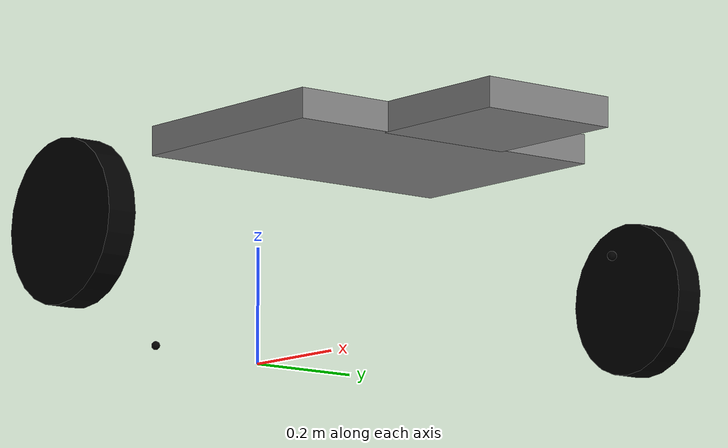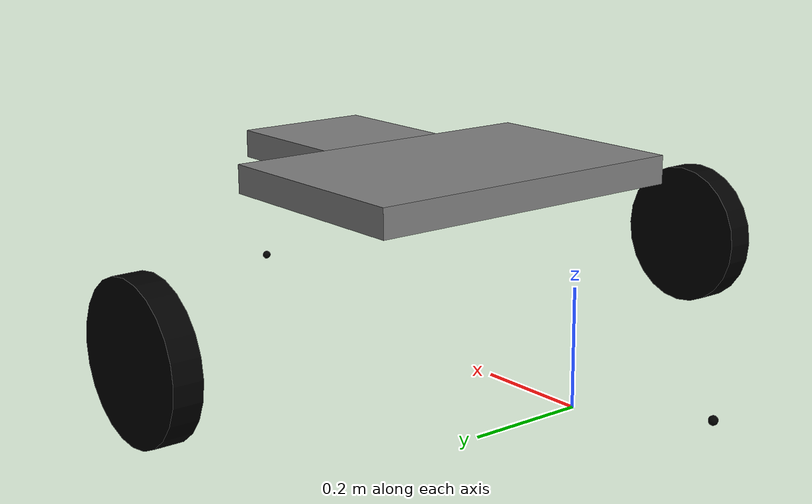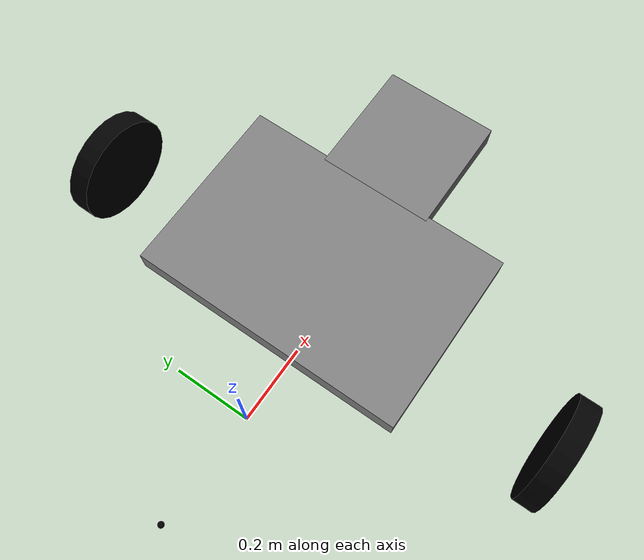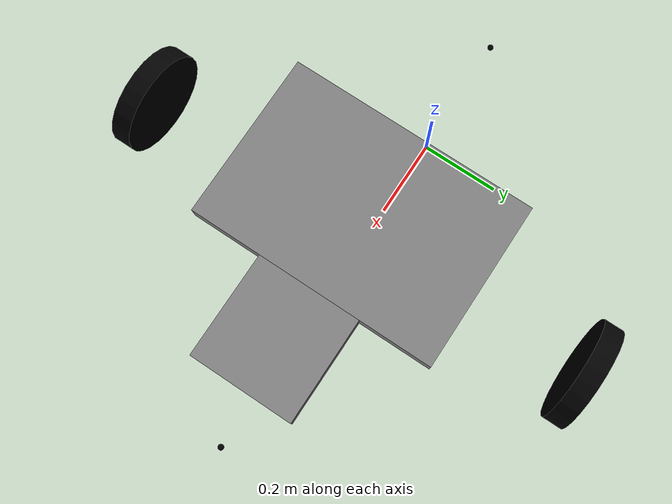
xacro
<robot name="my_base_link_floor" xmlns:xacro="http://www.ros.org/wiki/xacro"  >
    <xacro:property name="PI" value="3.141"/>
    <!-- 宏:黑色设置 -->
    <material name="black">
        <color rgba="0.0 0.0 0.0 1.0" />
    </material>
    <xacro:property name="footprint_radius" value="0.001" />
    <link name="base_footprint">
        <visual>
            <geometry>
                <sphere radius="${footprint_radius}" />
            </geometry>
        </visual>
    </link>
    <xacro:property name="base_link_width" value="0.600" />
    <xacro:property name="base_link_length" value="0.400" />
    <xacro:property name="base_link_height" value="0.050" />
    <xacro:property name="earth_space" value="0.1325" />

    <link name="base_link">
        <visual>
            <geometry>
                <box size="${base_link_length} ${base_link_width} ${base_link_height}" />
            </geometry>
            <material name="grey">
                <color rgba="0.5 0.5 0.5 1.0"/>
            </material>
        </visual>
    </link>
    <joint name="base_link2base_footprint" type="fixed">
      <parent link="base_footprint" />
      <child link="base_link" />
      <origin xyz="0.3 0 ${earth_space + base_link_length / 2 }" />
    </joint>

    <xacro:property name="footrest_link_width" value="0.250" />
    <xacro:property name="footrest_link_length" value="0.260" />
    <xacro:property name="footrest_link_height" value="0.050" />

    <link name="footrest_link">
        <visual>
            <geometry>
                <box size="${footrest_link_length} ${footrest_link_width} ${footrest_link_height}" />
            </geometry>
            <material name="grey">
                <color rgba="0.5 0.5 0.5 1.0"/>
            </material>
        </visual>
    </link>

    <joint name="footrest2base_link" type="fixed">
        <parent link="base_link" />
        <child link="footrest_link" />
        <origin xyz="0.320 0 0" rpy="0 0 0"/>
    </joint>

    <xacro:property name="wheel_radius" value="0.1325" />
    <xacro:property name="wheel_length" value="0.05" />

    <xacro:macro name="add_wheels" params="name flag">
    <link name="${name}_wheel">
        <visual>
          <geometry>
            <cylinder radius="${wheel_radius}" length="${wheel_length}" />
          </geometry>
          <origin xyz="0.0 0.0 0.0" rpy="${PI / 2} 0.0 0.0" />
          <material name="black" />
        </visual>
    </link>

    <joint name="${name}_wheel2base_link" type="continuous">
        <parent link="base_link" />
        <child link="${name}_wheel" />
        <origin xyz="0 ${flag * base_link_width} ${-(earth_space + base_link_length / 2 - wheel_radius) }" />
        <axis xyz="0 1 0" />
      </joint>
    </xacro:macro>
    <xacro:add_wheels name="left" flag="1" />
    <xacro:add_wheels name="right" flag="-1" />

    <xacro:property name="front_wheel_radius" value="0.0075" />
    <xacro:property name="front_wheel_length" value="0.05" />
    <xacro:macro name="add_front_wheel" params="name flag" >
      <link name="${name}_wheel">
        <visual>
            <geometry>
                <sphere radius="${front_wheel_radius}" />
            </geometry>
            <origin xyz="0 0 0" rpy="0 0 0" />
            <material name="black" />
        </visual>
      </link>

      <joint name="${name}_wheel2base_link" type="continuous">
          <parent link="base_link" />
          <child link="${name}_wheel" />
          <origin xyz="${flag * (base_link_width - front_wheel_radius)} 0 ${-(base_link_length / 2 + earth_space / 2)}" />
          <axis xyz="1 1 1" />
      </joint>
    </xacro:macro>

    <xacro:add_front_wheel name="front" flag="1" />
    <xacro:add_front_wheel name="back" flag="-1" />
    </robot>
